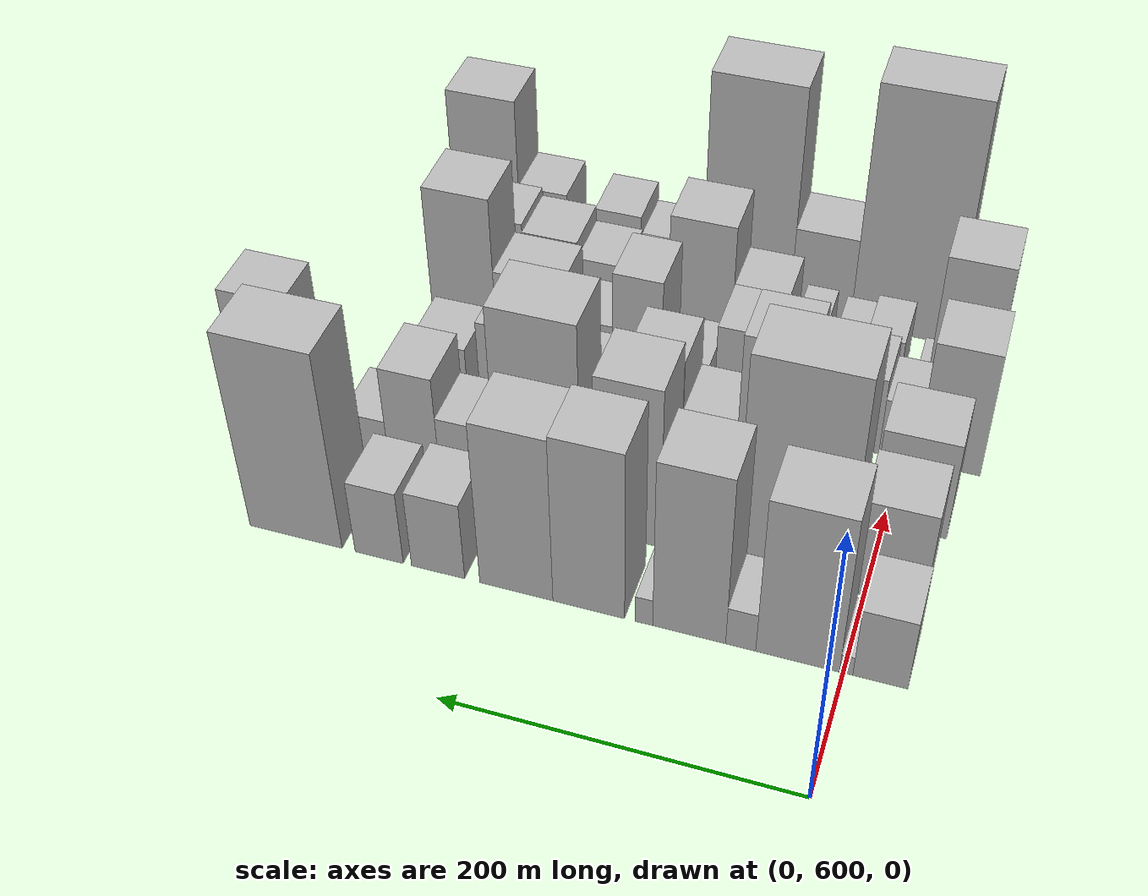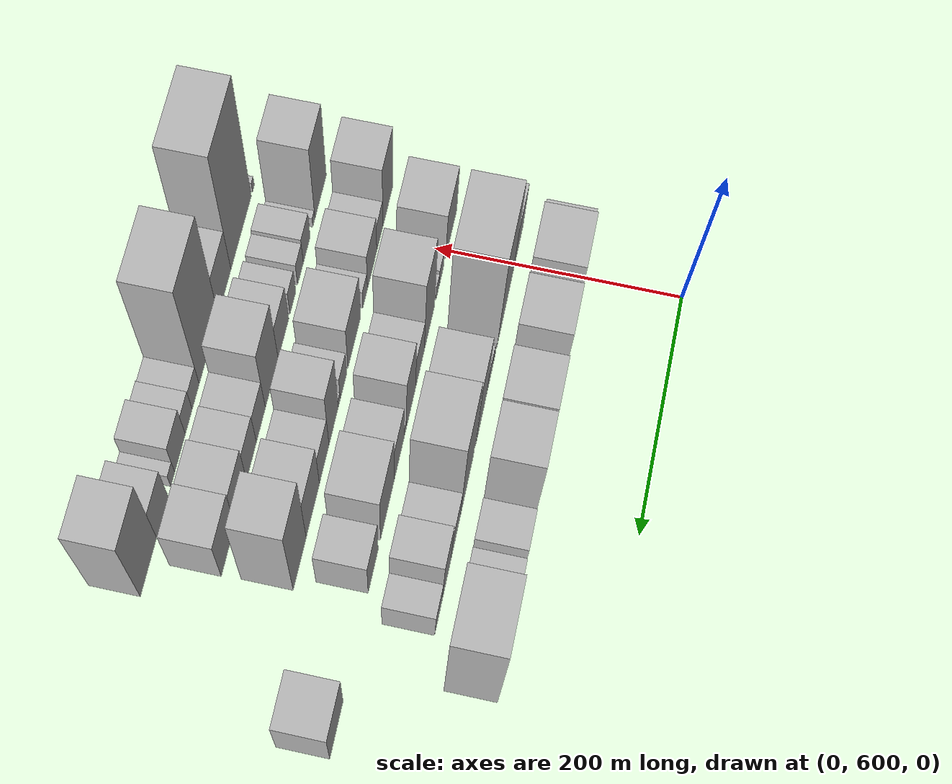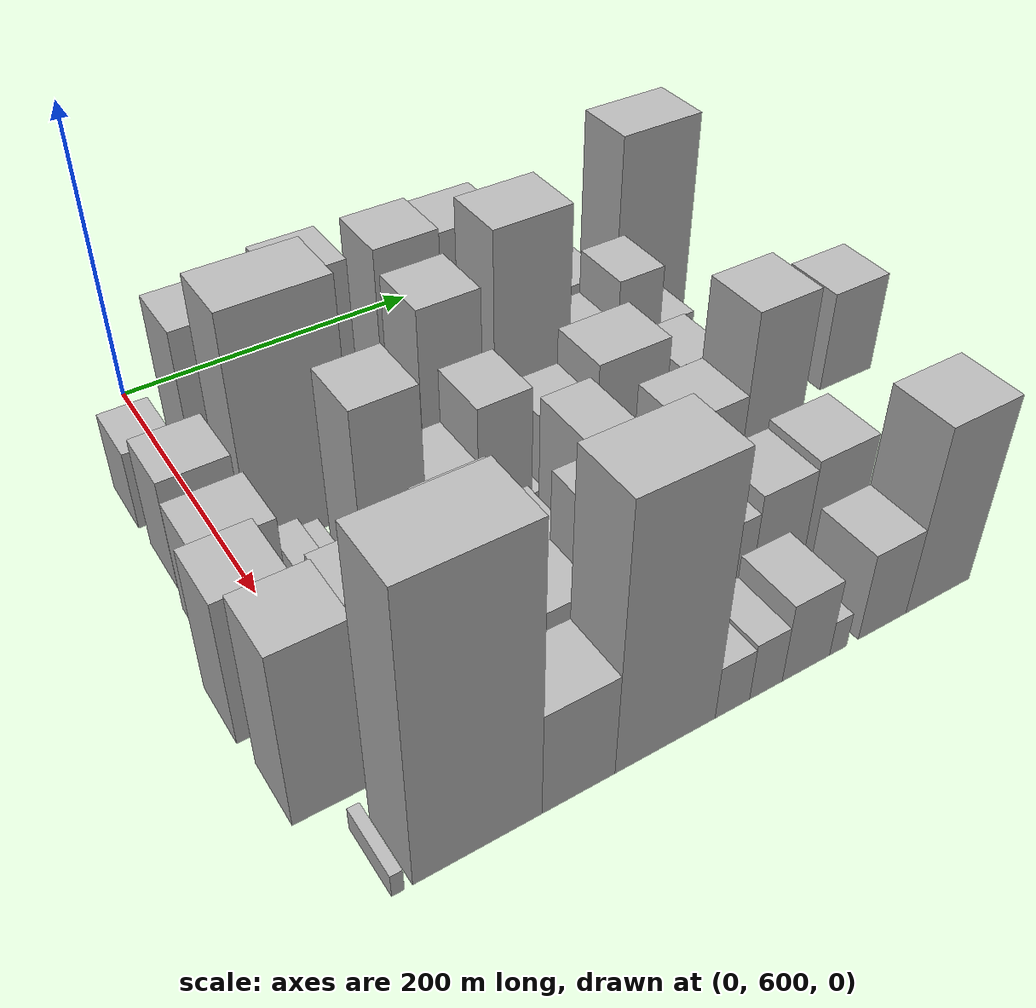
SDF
<sdf version="1.6">
 <world name="default">
  <model name="building_38">
   <static>1</static>
   <pose>100.0000 580.2497 0 0.000000 0.000000 0.000000</pose>
   <link name="link">
    <pose>0 0 27.00 0 0 0</pose>
    <collision name="collision"><geometry><box><size>40.0000 29.5528 54.0000</size></box></geometry></collision>
    <visual name="visual">
     <cast_shadows>0</cast_shadows>
     <geometry><box><size>40.0000 29.5528 54.0000</size></box></geometry>
     <material>
      <script>
       <uri>model://HANNAS_wall/materials/scripts</uri>
       <uri>model://HANNAS_wall/materials/textures</uri>
       <name>vrc/HANNAS_wall</name>
      </script>
     </material>
    </visual>
   </link>
  </model>
  <model name="building_39">
   <static>1</static>
   <pose>100.0000 598.6190 0 0.000000 0.000000 0.000000</pose>
   <link name="link">
    <pose>0 0 7.50 0 0 0</pose>
    <collision name="collision"><geometry><box><size>40.0000 7.1858 15.0000</size></box></geometry></collision>
    <visual name="visual">
     <cast_shadows>0</cast_shadows>
     <geometry><box><size>40.0000 7.1858 15.0000</size></box></geometry>
     <material>
      <script>
       <uri>model://HANNAS_wall/materials/scripts</uri>
       <uri>model://HANNAS_wall/materials/textures</uri>
       <name>vrc/HANNAS_wall</name>
      </script>
     </material>
    </visual>
   </link>
  </model>
  <model name="building_40">
   <static>1</static>
   <pose>100.0000 625.1180 0 0.000000 0.000000 0.000000</pose>
   <link name="link">
    <pose>0 0 60.00 0 0 0</pose>
    <collision name="collision"><geometry><box><size>40.0000 45.8122 120.0000</size></box></geometry></collision>
    <visual name="visual">
     <cast_shadows>0</cast_shadows>
     <geometry><box><size>40.0000 45.8122 120.0000</size></box></geometry>
     <material>
      <script>
       <uri>model://HANNAS_wall/materials/scripts</uri>
       <uri>model://HANNAS_wall/materials/textures</uri>
       <name>vrc/HANNAS_wall</name>
      </script>
     </material>
    </visual>
   </link>
  </model>
  <model name="building_41">
   <static>1</static>
   <pose>100.0000 656.3504 0 0.000000 0.000000 0.000000</pose>
   <link name="link">
    <pose>0 0 15.00 0 0 0</pose>
    <collision name="collision"><geometry><box><size>40.0000 16.6526 30.0000</size></box></geometry></collision>
    <visual name="visual">
     <cast_shadows>0</cast_shadows>
     <geometry><box><size>40.0000 16.6526 30.0000</size></box></geometry>
     <material>
      <script>
       <uri>model://HANNAS_wall/materials/scripts</uri>
       <uri>model://HANNAS_wall/materials/textures</uri>
       <name>vrc/HANNAS_wall</name>
      </script>
     </material>
    </visual>
   </link>
  </model>
  <model name="building_42">
   <static>1</static>
   <pose>100.0000 685.2054 0 0.000000 0.000000 0.000000</pose>
   <link name="link">
    <pose>0 0 64.50 0 0 0</pose>
    <collision name="collision"><geometry><box><size>40.0000 41.0574 129.0000</size></box></geometry></collision>
    <visual name="visual">
     <cast_shadows>0</cast_shadows>
     <geometry><box><size>40.0000 41.0574 129.0000</size></box></geometry>
     <material>
      <script>
       <uri>model://HANNAS_wall/materials/scripts</uri>
       <uri>model://HANNAS_wall/materials/textures</uri>
       <name>vrc/HANNAS_wall</name>
      </script>
     </material>
    </visual>
   </link>
  </model>
  <model name="building_43">
   <static>1</static>
   <pose>100.0000 710.7277 0 0.000000 0.000000 0.000000</pose>
   <link name="link">
    <pose>0 0 10.50 0 0 0</pose>
    <collision name="collision"><geometry><box><size>40.0000 9.9872 21.0000</size></box></geometry></collision>
    <visual name="visual">
     <cast_shadows>0</cast_shadows>
     <geometry><box><size>40.0000 9.9872 21.0000</size></box></geometry>
     <material>
      <script>
       <uri>model://HANNAS_wall/materials/scripts</uri>
       <uri>model://HANNAS_wall/materials/textures</uri>
       <name>vrc/HANNAS_wall</name>
      </script>
     </material>
    </visual>
   </link>
  </model>
  <model name="building_44">
   <static>1</static>
   <pose>100.0000 742.4370 0 0.000000 0.000000 0.000000</pose>
   <link name="link">
    <pose>0 0 64.50 0 0 0</pose>
    <collision name="collision"><geometry><box><size>40.0000 41.4312 129.0000</size></box></geometry></collision>
    <visual name="visual">
     <cast_shadows>0</cast_shadows>
     <geometry><box><size>40.0000 41.4312 129.0000</size></box></geometry>
     <material>
      <script>
       <uri>model://HANNAS_wall/materials/scripts</uri>
       <uri>model://HANNAS_wall/materials/textures</uri>
       <name>vrc/HANNAS_wall</name>
      </script>
     </material>
    </visual>
   </link>
  </model>
  <model name="building_45">
   <static>1</static>
   <pose>100.0000 784.6924 0 0.000000 0.000000 0.000000</pose>
   <link name="link">
    <pose>0 0 63.00 0 0 0</pose>
    <collision name="collision"><geometry><box><size>40.0000 43.0796 126.0000</size></box></geometry></collision>
    <visual name="visual">
     <cast_shadows>0</cast_shadows>
     <geometry><box><size>40.0000 43.0796 126.0000</size></box></geometry>
     <material>
      <script>
       <uri>model://HANNAS_wall/materials/scripts</uri>
       <uri>model://HANNAS_wall/materials/textures</uri>
       <name>vrc/HANNAS_wall</name>
      </script>
     </material>
    </visual>
   </link>
  </model>
  <model name="building_46">
   <static>1</static>
   <pose>100.0000 831.2336 0 0.000000 0.000000 0.000000</pose>
   <link name="link">
    <pose>0 0 30.00 0 0 0</pose>
    <collision name="collision"><geometry><box><size>40.0000 32.0029 60.0000</size></box></geometry></collision>
    <visual name="visual">
     <cast_shadows>0</cast_shadows>
     <geometry><box><size>40.0000 32.0029 60.0000</size></box></geometry>
     <material>
      <script>
       <uri>model://HANNAS_wall/materials/scripts</uri>
       <uri>model://HANNAS_wall/materials/textures</uri>
       <name>vrc/HANNAS_wall</name>
      </script>
     </material>
    </visual>
   </link>
  </model>
  <model name="building_47">
   <static>1</static>
   <pose>100.0000 866.9952 0 0.000000 0.000000 0.000000</pose>
   <link name="link">
    <pose>0 0 28.50 0 0 0</pose>
    <collision name="collision"><geometry><box><size>40.0000 29.5203 57.0000</size></box></geometry></collision>
    <visual name="visual">
     <cast_shadows>0</cast_shadows>
     <geometry><box><size>40.0000 29.5203 57.0000</size></box></geometry>
     <material>
      <script>
       <uri>model://HANNAS_wall/materials/scripts</uri>
       <uri>model://HANNAS_wall/materials/textures</uri>
       <name>vrc/HANNAS_wall</name>
      </script>
     </material>
    </visual>
   </link>
  </model>
  <model name="building_48">
   <static>1</static>
   <pose>100.0000 918.5560 0 0.000000 0.000000 0.000000</pose>
   <link name="link">
    <pose>0 0 75.00 0 0 0</pose>
    <collision name="collision"><geometry><box><size>40.0000 57.6013 150.0000</size></box></geometry></collision>
    <visual name="visual">
     <cast_shadows>0</cast_shadows>
     <geometry><box><size>40.0000 57.6013 150.0000</size></box></geometry>
     <material>
      <script>
       <uri>model://HANNAS_wall/materials/scripts</uri>
       <uri>model://HANNAS_wall/materials/textures</uri>
       <name>vrc/HANNAS_wall</name>
      </script>
     </material>
    </visual>
   </link>
  </model>
  <model name="building_95">
   <static>1</static>
   <pose>155.0000 586.9860 0 0.000000 0.000000 0.000000</pose>
   <link name="link">
    <pose>0 0 37.50 0 0 0</pose>
    <collision name="collision"><geometry><box><size>40.0000 40.6171 75.0000</size></box></geometry></collision>
    <visual name="visual">
     <cast_shadows>0</cast_shadows>
     <geometry><box><size>40.0000 40.6171 75.0000</size></box></geometry>
     <material>
      <script>
       <uri>model://HANNAS_wall/materials/scripts</uri>
       <uri>model://HANNAS_wall/materials/textures</uri>
       <name>vrc/HANNAS_wall</name>
      </script>
     </material>
    </visual>
   </link>
  </model>
  <model name="building_96">
   <static>1</static>
   <pose>155.0000 641.9509 0 0.000000 0.000000 0.000000</pose>
   <link name="link">
    <pose>0 0 81.00 0 0 0</pose>
    <collision name="collision"><geometry><box><size>40.0000 63.3127 162.0000</size></box></geometry></collision>
    <visual name="visual">
     <cast_shadows>0</cast_shadows>
     <geometry><box><size>40.0000 63.3127 162.0000</size></box></geometry>
     <material>
      <script>
       <uri>model://HANNAS_wall/materials/scripts</uri>
       <uri>model://HANNAS_wall/materials/textures</uri>
       <name>vrc/HANNAS_wall</name>
      </script>
     </material>
    </visual>
   </link>
  </model>
  <model name="building_97">
   <static>1</static>
   <pose>155.0000 685.5386 0 0.000000 0.000000 0.000000</pose>
   <link name="link">
    <pose>0 0 12.00 0 0 0</pose>
    <collision name="collision"><geometry><box><size>40.0000 9.8627 24.0000</size></box></geometry></collision>
    <visual name="visual">
     <cast_shadows>0</cast_shadows>
     <geometry><box><size>40.0000 9.8627 24.0000</size></box></geometry>
     <material>
      <script>
       <uri>model://HANNAS_wall/materials/scripts</uri>
       <uri>model://HANNAS_wall/materials/textures</uri>
       <name>vrc/HANNAS_wall</name>
      </script>
     </material>
    </visual>
   </link>
  </model>
  <model name="building_98">
   <static>1</static>
   <pose>155.0000 702.4567 0 0.000000 0.000000 0.000000</pose>
   <link name="link">
    <pose>0 0 22.50 0 0 0</pose>
    <collision name="collision"><geometry><box><size>40.0000 23.9733 45.0000</size></box></geometry></collision>
    <visual name="visual">
     <cast_shadows>0</cast_shadows>
     <geometry><box><size>40.0000 23.9733 45.0000</size></box></geometry>
     <material>
      <script>
       <uri>model://HANNAS_wall/materials/scripts</uri>
       <uri>model://HANNAS_wall/materials/textures</uri>
       <name>vrc/HANNAS_wall</name>
      </script>
     </material>
    </visual>
   </link>
  </model>
  <model name="building_99">
   <static>1</static>
   <pose>155.0000 737.2817 0 0.000000 0.000000 0.000000</pose>
   <link name="link">
    <pose>0 0 61.50 0 0 0</pose>
    <collision name="collision"><geometry><box><size>40.0000 39.6768 123.0000</size></box></geometry></collision>
    <visual name="visual">
     <cast_shadows>0</cast_shadows>
     <geometry><box><size>40.0000 39.6768 123.0000</size></box></geometry>
     <material>
      <script>
       <uri>model://HANNAS_wall/materials/scripts</uri>
       <uri>model://HANNAS_wall/materials/textures</uri>
       <name>vrc/HANNAS_wall</name>
      </script>
     </material>
    </visual>
   </link>
  </model>
  <model name="building_100">
   <static>1</static>
   <pose>155.0000 790.6278 0 0.000000 0.000000 0.000000</pose>
   <link name="link">
    <pose>0 0 78.00 0 0 0</pose>
    <collision name="collision"><geometry><box><size>40.0000 51.0154 156.0000</size></box></geometry></collision>
    <visual name="visual">
     <cast_shadows>0</cast_shadows>
     <geometry><box><size>40.0000 51.0154 156.0000</size></box></geometry>
     <material>
      <script>
       <uri>model://HANNAS_wall/materials/scripts</uri>
       <uri>model://HANNAS_wall/materials/textures</uri>
       <name>vrc/HANNAS_wall</name>
      </script>
     </material>
    </visual>
   </link>
  </model>
  <model name="building_101">
   <static>1</static>
   <pose>155.0000 833.4321 0 0.000000 0.000000 0.000000</pose>
   <link name="link">
    <pose>0 0 31.50 0 0 0</pose>
    <collision name="collision"><geometry><box><size>40.0000 34.5933 63.0000</size></box></geometry></collision>
    <visual name="visual">
     <cast_shadows>0</cast_shadows>
     <geometry><box><size>40.0000 34.5933 63.0000</size></box></geometry>
     <material>
      <script>
       <uri>model://HANNAS_wall/materials/scripts</uri>
       <uri>model://HANNAS_wall/materials/textures</uri>
       <name>vrc/HANNAS_wall</name>
      </script>
     </material>
    </visual>
   </link>
  </model>
  <model name="building_102">
   <static>1</static>
   <pose>155.0000 866.6142 0 0.000000 0.000000 0.000000</pose>
   <link name="link">
    <pose>0 0 46.50 0 0 0</pose>
    <collision name="collision"><geometry><box><size>40.0000 31.7709 93.0000</size></box></geometry></collision>
    <visual name="visual">
     <cast_shadows>0</cast_shadows>
     <geometry><box><size>40.0000 31.7709 93.0000</size></box></geometry>
     <material>
      <script>
       <uri>model://HANNAS_wall/materials/scripts</uri>
       <uri>model://HANNAS_wall/materials/textures</uri>
       <name>vrc/HANNAS_wall</name>
      </script>
     </material>
    </visual>
   </link>
  </model>
  <model name="building_103">
   <static>1</static>
   <pose>155.0000 895.5078 0 0.000000 0.000000 0.000000</pose>
   <link name="link">
    <pose>0 0 25.50 0 0 0</pose>
    <collision name="collision"><geometry><box><size>40.0000 26.0162 51.0000</size></box></geometry></collision>
    <visual name="visual">
     <cast_shadows>0</cast_shadows>
     <geometry><box><size>40.0000 26.0162 51.0000</size></box></geometry>
     <material>
      <script>
       <uri>model://HANNAS_wall/materials/scripts</uri>
       <uri>model://HANNAS_wall/materials/textures</uri>
       <name>vrc/HANNAS_wall</name>
      </script>
     </material>
    </visual>
   </link>
  </model>
  <model name="building_147">
   <static>1</static>
   <pose>210.0000 585.4125 0 0.000000 0.000000 0.000000</pose>
   <link name="link">
    <pose>0 0 37.50 0 0 0</pose>
    <collision name="collision"><geometry><box><size>40.0000 44.0689 75.0000</size></box></geometry></collision>
    <visual name="visual">
     <cast_shadows>0</cast_shadows>
     <geometry><box><size>40.0000 44.0689 75.0000</size></box></geometry>
     <material>
      <script>
       <uri>model://HANNAS_wall/materials/scripts</uri>
       <uri>model://HANNAS_wall/materials/textures</uri>
       <name>vrc/HANNAS_wall</name>
      </script>
     </material>
    </visual>
   </link>
  </model>
  <model name="building_148">
   <static>1</static>
   <pose>210.0000 623.9679 0 0.000000 0.000000 0.000000</pose>
   <link name="link">
    <pose>0 0 15.00 0 0 0</pose>
    <collision name="collision"><geometry><box><size>40.0000 17.0419 30.0000</size></box></geometry></collision>
    <visual name="visual">
     <cast_shadows>0</cast_shadows>
     <geometry><box><size>40.0000 17.0419 30.0000</size></box></geometry>
     <material>
      <script>
       <uri>model://HANNAS_wall/materials/scripts</uri>
       <uri>model://HANNAS_wall/materials/textures</uri>
       <name>vrc/HANNAS_wall</name>
      </script>
     </material>
    </visual>
   </link>
  </model>
  <model name="building_149">
   <static>1</static>
   <pose>210.0000 638.2178 0 0.000000 0.000000 0.000000</pose>
   <link name="link">
    <pose>0 0 12.00 0 0 0</pose>
    <collision name="collision"><geometry><box><size>40.0000 11.4579 24.0000</size></box></geometry></collision>
    <visual name="visual">
     <cast_shadows>0</cast_shadows>
     <geometry><box><size>40.0000 11.4579 24.0000</size></box></geometry>
     <material>
      <script>
       <uri>model://HANNAS_wall/materials/scripts</uri>
       <uri>model://HANNAS_wall/materials/textures</uri>
       <name>vrc/HANNAS_wall</name>
      </script>
     </material>
    </visual>
   </link>
  </model>
  <model name="building_150">
   <static>1</static>
   <pose>210.0000 669.3617 0 0.000000 0.000000 0.000000</pose>
   <link name="link">
    <pose>0 0 61.50 0 0 0</pose>
    <collision name="collision"><geometry><box><size>40.0000 38.8299 123.0000</size></box></geometry></collision>
    <visual name="visual">
     <cast_shadows>0</cast_shadows>
     <geometry><box><size>40.0000 38.8299 123.0000</size></box></geometry>
     <material>
      <script>
       <uri>model://HANNAS_wall/materials/scripts</uri>
       <uri>model://HANNAS_wall/materials/textures</uri>
       <name>vrc/HANNAS_wall</name>
      </script>
     </material>
    </visual>
   </link>
  </model>
  <model name="building_151">
   <static>1</static>
   <pose>210.0000 704.8862 0 0.000000 0.000000 0.000000</pose>
   <link name="link">
    <pose>0 0 28.50 0 0 0</pose>
    <collision name="collision"><geometry><box><size>40.0000 32.2192 57.0000</size></box></geometry></collision>
    <visual name="visual">
     <cast_shadows>0</cast_shadows>
     <geometry><box><size>40.0000 32.2192 57.0000</size></box></geometry>
     <material>
      <script>
       <uri>model://HANNAS_wall/materials/scripts</uri>
       <uri>model://HANNAS_wall/materials/textures</uri>
       <name>vrc/HANNAS_wall</name>
      </script>
     </material>
    </visual>
   </link>
  </model>
  <model name="building_152">
   <static>1</static>
   <pose>210.0000 737.9944 0 0.000000 0.000000 0.000000</pose>
   <link name="link">
    <pose>0 0 46.50 0 0 0</pose>
    <collision name="collision"><geometry><box><size>40.0000 33.9971 93.0000</size></box></geometry></collision>
    <visual name="visual">
     <cast_shadows>0</cast_shadows>
     <geometry><box><size>40.0000 33.9971 93.0000</size></box></geometry>
     <material>
      <script>
       <uri>model://HANNAS_wall/materials/scripts</uri>
       <uri>model://HANNAS_wall/materials/textures</uri>
       <name>vrc/HANNAS_wall</name>
      </script>
     </material>
    </visual>
   </link>
  </model>
  <model name="building_153">
   <static>1</static>
   <pose>210.0000 759.0286 0 0.000000 0.000000 0.000000</pose>
   <link name="link">
    <pose>0 0 9.00 0 0 0</pose>
    <collision name="collision"><geometry><box><size>40.0000 8.0713 18.0000</size></box></geometry></collision>
    <visual name="visual">
     <cast_shadows>0</cast_shadows>
     <geometry><box><size>40.0000 8.0713 18.0000</size></box></geometry>
     <material>
      <script>
       <uri>model://HANNAS_wall/materials/scripts</uri>
       <uri>model://HANNAS_wall/materials/textures</uri>
       <name>vrc/HANNAS_wall</name>
      </script>
     </material>
    </visual>
   </link>
  </model>
  <model name="building_154">
   <static>1</static>
   <pose>210.0000 780.3197 0 0.000000 0.000000 0.000000</pose>
   <link name="link">
    <pose>0 0 33.00 0 0 0</pose>
    <collision name="collision"><geometry><box><size>40.0000 34.5108 66.0000</size></box></geometry></collision>
    <visual name="visual">
     <cast_shadows>0</cast_shadows>
     <geometry><box><size>40.0000 34.5108 66.0000</size></box></geometry>
     <material>
      <script>
       <uri>model://HANNAS_wall/materials/scripts</uri>
       <uri>model://HANNAS_wall/materials/textures</uri>
       <name>vrc/HANNAS_wall</name>
      </script>
     </material>
    </visual>
   </link>
  </model>
  <model name="building_155">
   <static>1</static>
   <pose>210.0000 821.7364 0 0.000000 0.000000 0.000000</pose>
   <link name="link">
    <pose>0 0 45.00 0 0 0</pose>
    <collision name="collision"><geometry><box><size>40.0000 48.3228 90.0000</size></box></geometry></collision>
    <visual name="visual">
     <cast_shadows>0</cast_shadows>
     <geometry><box><size>40.0000 48.3228 90.0000</size></box></geometry>
     <material>
      <script>
       <uri>model://HANNAS_wall/materials/scripts</uri>
       <uri>model://HANNAS_wall/materials/textures</uri>
       <name>vrc/HANNAS_wall</name>
      </script>
     </material>
    </visual>
   </link>
  </model>
  <model name="building_156">
   <static>1</static>
   <pose>210.0000 870.8771 0 0.000000 0.000000 0.000000</pose>
   <link name="link">
    <pose>0 0 33.00 0 0 0</pose>
    <collision name="collision"><geometry><box><size>40.0000 33.9586 66.0000</size></box></geometry></collision>
    <visual name="visual">
     <cast_shadows>0</cast_shadows>
     <geometry><box><size>40.0000 33.9586 66.0000</size></box></geometry>
     <material>
      <script>
       <uri>model://HANNAS_wall/materials/scripts</uri>
       <uri>model://HANNAS_wall/materials/textures</uri>
       <name>vrc/HANNAS_wall</name>
      </script>
     </material>
    </visual>
   </link>
  </model>
  <model name="building_157">
   <static>1</static>
   <pose>210.0000 992.0247 0 0.000000 0.000000 0.000000</pose>
   <link name="link">
    <pose>0 0 36.00 0 0 0</pose>
    <collision name="collision"><geometry><box><size>40.0000 42.7788 72.0000</size></box></geometry></collision>
    <visual name="visual">
     <cast_shadows>0</cast_shadows>
     <geometry><box><size>40.0000 42.7788 72.0000</size></box></geometry>
     <material>
      <script>
       <uri>model://HANNAS_wall/materials/scripts</uri>
       <uri>model://HANNAS_wall/materials/textures</uri>
       <name>vrc/HANNAS_wall</name>
      </script>
     </material>
    </visual>
   </link>
  </model>
  <model name="building_199">
   <static>1</static>
   <pose>265.0000 571.6134 0 0.000000 0.000000 0.000000</pose>
   <link name="link">
    <pose>0 0 48.00 0 0 0</pose>
    <collision name="collision"><geometry><box><size>40.0000 38.2694 96.0000</size></box></geometry></collision>
    <visual name="visual">
     <cast_shadows>0</cast_shadows>
     <geometry><box><size>40.0000 38.2694 96.0000</size></box></geometry>
     <material>
      <script>
       <uri>model://HANNAS_wall/materials/scripts</uri>
       <uri>model://HANNAS_wall/materials/textures</uri>
       <name>vrc/HANNAS_wall</name>
      </script>
     </material>
    </visual>
   </link>
  </model>
  <model name="building_200">
   <static>1</static>
   <pose>265.0000 602.0293 0 0.000000 0.000000 0.000000</pose>
   <link name="link">
    <pose>0 0 22.50 0 0 0</pose>
    <collision name="collision"><geometry><box><size>40.0000 22.5624 45.0000</size></box></geometry></collision>
    <visual name="visual">
     <cast_shadows>0</cast_shadows>
     <geometry><box><size>40.0000 22.5624 45.0000</size></box></geometry>
     <material>
      <script>
       <uri>model://HANNAS_wall/materials/scripts</uri>
       <uri>model://HANNAS_wall/materials/textures</uri>
       <name>vrc/HANNAS_wall</name>
      </script>
     </material>
    </visual>
   </link>
  </model>
  <model name="building_201">
   <static>1</static>
   <pose>265.0000 630.2120 0 0.000000 0.000000 0.000000</pose>
   <link name="link">
    <pose>0 0 30.00 0 0 0</pose>
    <collision name="collision"><geometry><box><size>40.0000 33.8030 60.0000</size></box></geometry></collision>
    <visual name="visual">
     <cast_shadows>0</cast_shadows>
     <geometry><box><size>40.0000 33.8030 60.0000</size></box></geometry>
     <material>
      <script>
       <uri>model://HANNAS_wall/materials/scripts</uri>
       <uri>model://HANNAS_wall/materials/textures</uri>
       <name>vrc/HANNAS_wall</name>
      </script>
     </material>
    </visual>
   </link>
  </model>
  <model name="building_202">
   <static>1</static>
   <pose>265.0000 655.3230 0 0.000000 0.000000 0.000000</pose>
   <link name="link">
    <pose>0 0 15.00 0 0 0</pose>
    <collision name="collision"><geometry><box><size>40.0000 16.4191 30.0000</size></box></geometry></collision>
    <visual name="visual">
     <cast_shadows>0</cast_shadows>
     <geometry><box><size>40.0000 16.4191 30.0000</size></box></geometry>
     <material>
      <script>
       <uri>model://HANNAS_wall/materials/scripts</uri>
       <uri>model://HANNAS_wall/materials/textures</uri>
       <name>vrc/HANNAS_wall</name>
      </script>
     </material>
    </visual>
   </link>
  </model>
  <model name="building_203">
   <static>1</static>
   <pose>265.0000 693.8082 0 0.000000 0.000000 0.000000</pose>
   <link name="link">
    <pose>0 0 37.50 0 0 0</pose>
    <collision name="collision"><geometry><box><size>40.0000 44.5512 75.0000</size></box></geometry></collision>
    <visual name="visual">
     <cast_shadows>0</cast_shadows>
     <geometry><box><size>40.0000 44.5512 75.0000</size></box></geometry>
     <material>
      <script>
       <uri>model://HANNAS_wall/materials/scripts</uri>
       <uri>model://HANNAS_wall/materials/textures</uri>
       <name>vrc/HANNAS_wall</name>
      </script>
     </material>
    </visual>
   </link>
  </model>
  <model name="building_204">
   <static>1</static>
   <pose>265.0000 731.2481 0 0.000000 0.000000 0.000000</pose>
   <link name="link">
    <pose>0 0 21.00 0 0 0</pose>
    <collision name="collision"><geometry><box><size>40.0000 22.3287 42.0000</size></box></geometry></collision>
    <visual name="visual">
     <cast_shadows>0</cast_shadows>
     <geometry><box><size>40.0000 22.3287 42.0000</size></box></geometry>
     <material>
      <script>
       <uri>model://HANNAS_wall/materials/scripts</uri>
       <uri>model://HANNAS_wall/materials/textures</uri>
       <name>vrc/HANNAS_wall</name>
      </script>
     </material>
    </visual>
   </link>
  </model>
  <model name="building_205">
   <static>1</static>
   <pose>265.0000 745.9995 0 0.000000 0.000000 0.000000</pose>
   <link name="link">
    <pose>0 0 7.50 0 0 0</pose>
    <collision name="collision"><geometry><box><size>40.0000 7.1740 15.0000</size></box></geometry></collision>
    <visual name="visual">
     <cast_shadows>0</cast_shadows>
     <geometry><box><size>40.0000 7.1740 15.0000</size></box></geometry>
     <material>
      <script>
       <uri>model://HANNAS_wall/materials/scripts</uri>
       <uri>model://HANNAS_wall/materials/textures</uri>
       <name>vrc/HANNAS_wall</name>
      </script>
     </material>
    </visual>
   </link>
  </model>
  <model name="building_206">
   <static>1</static>
   <pose>265.0000 765.1275 0 0.000000 0.000000 0.000000</pose>
   <link name="link">
    <pose>0 0 49.50 0 0 0</pose>
    <collision name="collision"><geometry><box><size>40.0000 31.0821 99.0000</size></box></geometry></collision>
    <visual name="visual">
     <cast_shadows>0</cast_shadows>
     <geometry><box><size>40.0000 31.0821 99.0000</size></box></geometry>
     <material>
      <script>
       <uri>model://HANNAS_wall/materials/scripts</uri>
       <uri>model://HANNAS_wall/materials/textures</uri>
       <name>vrc/HANNAS_wall</name>
      </script>
     </material>
    </visual>
   </link>
  </model>
  <model name="building_207">
   <static>1</static>
   <pose>265.0000 796.6740 0 0.000000 0.000000 0.000000</pose>
   <link name="link">
    <pose>0 0 28.50 0 0 0</pose>
    <collision name="collision"><geometry><box><size>40.0000 32.0108 57.0000</size></box></geometry></collision>
    <visual name="visual">
     <cast_shadows>0</cast_shadows>
     <geometry><box><size>40.0000 32.0108 57.0000</size></box></geometry>
     <material>
      <script>
       <uri>model://HANNAS_wall/materials/scripts</uri>
       <uri>model://HANNAS_wall/materials/textures</uri>
       <name>vrc/HANNAS_wall</name>
      </script>
     </material>
    </visual>
   </link>
  </model>
  <model name="building_208">
   <static>1</static>
   <pose>265.0000 834.4291 0 0.000000 0.000000 0.000000</pose>
   <link name="link">
    <pose>0 0 40.50 0 0 0</pose>
    <collision name="collision"><geometry><box><size>40.0000 43.4993 81.0000</size></box></geometry></collision>
    <visual name="visual">
     <cast_shadows>0</cast_shadows>
     <geometry><box><size>40.0000 43.4993 81.0000</size></box></geometry>
     <material>
      <script>
       <uri>model://HANNAS_wall/materials/scripts</uri>
       <uri>model://HANNAS_wall/materials/textures</uri>
       <name>vrc/HANNAS_wall</name>
      </script>
     </material>
    </visual>
   </link>
  </model>
  <model name="building_209">
   <static>1</static>
   <pose>265.0000 876.9808 0 0.000000 0.000000 0.000000</pose>
   <link name="link">
    <pose>0 0 67.50 0 0 0</pose>
    <collision name="collision"><geometry><box><size>40.0000 41.6041 135.0000</size></box></geometry></collision>
    <visual name="visual">
     <cast_shadows>0</cast_shadows>
     <geometry><box><size>40.0000 41.6041 135.0000</size></box></geometry>
     <material>
      <script>
       <uri>model://HANNAS_wall/materials/scripts</uri>
       <uri>model://HANNAS_wall/materials/textures</uri>
       <name>vrc/HANNAS_wall</name>
      </script>
     </material>
    </visual>
   </link>
  </model>
  <model name="building_252">
   <static>1</static>
   <pose>320.0000 575.4097 0 0.000000 0.000000 0.000000</pose>
   <link name="link">
    <pose>0 0 57.00 0 0 0</pose>
    <collision name="collision"><geometry><box><size>40.0000 40.0178 114.0000</size></box></geometry></collision>
    <visual name="visual">
     <cast_shadows>0</cast_shadows>
     <geometry><box><size>40.0000 40.0178 114.0000</size></box></geometry>
     <material>
      <script>
       <uri>model://HANNAS_wall/materials/scripts</uri>
       <uri>model://HANNAS_wall/materials/textures</uri>
       <name>vrc/HANNAS_wall</name>
      </script>
     </material>
    </visual>
   </link>
  </model>
  <model name="building_253">
   <static>1</static>
   <pose>320.0000 599.1319 0 0.000000 0.000000 0.000000</pose>
   <link name="link">
    <pose>0 0 7.50 0 0 0</pose>
    <collision name="collision"><geometry><box><size>40.0000 7.4267 15.0000</size></box></geometry></collision>
    <visual name="visual">
     <cast_shadows>0</cast_shadows>
     <geometry><box><size>40.0000 7.4267 15.0000</size></box></geometry>
     <material>
      <script>
       <uri>model://HANNAS_wall/materials/scripts</uri>
       <uri>model://HANNAS_wall/materials/textures</uri>
       <name>vrc/HANNAS_wall</name>
      </script>
     </material>
    </visual>
   </link>
  </model>
  <model name="building_254">
   <static>1</static>
   <pose>320.0000 623.7191 0 0.000000 0.000000 0.000000</pose>
   <link name="link">
    <pose>0 0 21.00 0 0 0</pose>
    <collision name="collision"><geometry><box><size>40.0000 23.7475 42.0000</size></box></geometry></collision>
    <visual name="visual">
     <cast_shadows>0</cast_shadows>
     <geometry><box><size>40.0000 23.7475 42.0000</size></box></geometry>
     <material>
      <script>
       <uri>model://HANNAS_wall/materials/scripts</uri>
       <uri>model://HANNAS_wall/materials/textures</uri>
       <name>vrc/HANNAS_wall</name>
      </script>
     </material>
    </visual>
   </link>
  </model>
  <model name="building_255">
   <static>1</static>
   <pose>320.0000 645.3719 0 0.000000 0.000000 0.000000</pose>
   <link name="link">
    <pose>0 0 18.00 0 0 0</pose>
    <collision name="collision"><geometry><box><size>40.0000 19.5583 36.0000</size></box></geometry></collision>
    <visual name="visual">
     <cast_shadows>0</cast_shadows>
     <geometry><box><size>40.0000 19.5583 36.0000</size></box></geometry>
     <material>
      <script>
       <uri>model://HANNAS_wall/materials/scripts</uri>
       <uri>model://HANNAS_wall/materials/textures</uri>
       <name>vrc/HANNAS_wall</name>
      </script>
     </material>
    </visual>
   </link>
  </model>
  <model name="building_256">
   <static>1</static>
   <pose>320.0000 671.0574 0 0.000000 0.000000 0.000000</pose>
   <link name="link">
    <pose>0 0 19.50 0 0 0</pose>
    <collision name="collision"><geometry><box><size>40.0000 19.8127 39.0000</size></box></geometry></collision>
    <visual name="visual">
     <cast_shadows>0</cast_shadows>
     <geometry><box><size>40.0000 19.8127 39.0000</size></box></geometry>
     <material>
      <script>
       <uri>model://HANNAS_wall/materials/scripts</uri>
       <uri>model://HANNAS_wall/materials/textures</uri>
       <name>vrc/HANNAS_wall</name>
      </script>
     </material>
    </visual>
   </link>
  </model>
  <model name="building_257">
   <static>1</static>
   <pose>320.0000 702.4006 0 0.000000 0.000000 0.000000</pose>
   <link name="link">
    <pose>0 0 30.00 0 0 0</pose>
    <collision name="collision"><geometry><box><size>40.0000 34.8736 60.0000</size></box></geometry></collision>
    <visual name="visual">
     <cast_shadows>0</cast_shadows>
     <geometry><box><size>40.0000 34.8736 60.0000</size></box></geometry>
     <material>
      <script>
       <uri>model://HANNAS_wall/materials/scripts</uri>
       <uri>model://HANNAS_wall/materials/textures</uri>
       <name>vrc/HANNAS_wall</name>
      </script>
     </material>
    </visual>
   </link>
  </model>
  <model name="building_258">
   <static>1</static>
   <pose>320.0000 740.6330 0 0.000000 0.000000 0.000000</pose>
   <link name="link">
    <pose>0 0 52.50 0 0 0</pose>
    <collision name="collision"><geometry><box><size>40.0000 41.5913 105.0000</size></box></geometry></collision>
    <visual name="visual">
     <cast_shadows>0</cast_shadows>
     <geometry><box><size>40.0000 41.5913 105.0000</size></box></geometry>
     <material>
      <script>
       <uri>model://HANNAS_wall/materials/scripts</uri>
       <uri>model://HANNAS_wall/materials/textures</uri>
       <name>vrc/HANNAS_wall</name>
      </script>
     </material>
    </visual>
   </link>
  </model>
  <model name="building_259">
   <static>1</static>
   <pose>320.0000 775.8626 0 0.000000 0.000000 0.000000</pose>
   <link name="link">
    <pose>0 0 27.00 0 0 0</pose>
    <collision name="collision"><geometry><box><size>40.0000 28.8678 54.0000</size></box></geometry></collision>
    <visual name="visual">
     <cast_shadows>0</cast_shadows>
     <geometry><box><size>40.0000 28.8678 54.0000</size></box></geometry>
     <material>
      <script>
       <uri>model://HANNAS_wall/materials/scripts</uri>
       <uri>model://HANNAS_wall/materials/textures</uri>
       <name>vrc/HANNAS_wall</name>
      </script>
     </material>
    </visual>
   </link>
  </model>
  <model name="building_260">
   <static>1</static>
   <pose>320.0000 805.8638 0 0.000000 0.000000 0.000000</pose>
   <link name="link">
    <pose>0 0 28.50 0 0 0</pose>
    <collision name="collision"><geometry><box><size>40.0000 31.1346 57.0000</size></box></geometry></collision>
    <visual name="visual">
     <cast_shadows>0</cast_shadows>
     <geometry><box><size>40.0000 31.1346 57.0000</size></box></geometry>
     <material>
      <script>
       <uri>model://HANNAS_wall/materials/scripts</uri>
       <uri>model://HANNAS_wall/materials/textures</uri>
       <name>vrc/HANNAS_wall</name>
      </script>
     </material>
    </visual>
   </link>
  </model>
  <model name="building_261">
   <static>1</static>
   <pose>320.0000 839.6159 0 0.000000 0.000000 0.000000</pose>
   <link name="link">
    <pose>0 0 34.50 0 0 0</pose>
    <collision name="collision"><geometry><box><size>40.0000 36.3696 69.0000</size></box></geometry></collision>
    <visual name="visual">
     <cast_shadows>0</cast_shadows>
     <geometry><box><size>40.0000 36.3696 69.0000</size></box></geometry>
     <material>
      <script>
       <uri>model://HANNAS_wall/materials/scripts</uri>
       <uri>model://HANNAS_wall/materials/textures</uri>
       <name>vrc/HANNAS_wall</name>
      </script>
     </material>
    </visual>
   </link>
  </model>
  <model name="building_262">
   <static>1</static>
   <pose>320.0000 878.3900 0 0.000000 0.000000 0.000000</pose>
   <link name="link">
    <pose>0 0 37.50 0 0 0</pose>
    <collision name="collision"><geometry><box><size>40.0000 41.1786 75.0000</size></box></geometry></collision>
    <visual name="visual">
     <cast_shadows>0</cast_shadows>
     <geometry><box><size>40.0000 41.1786 75.0000</size></box></geometry>
     <material>
      <script>
       <uri>model://HANNAS_wall/materials/scripts</uri>
       <uri>model://HANNAS_wall/materials/textures</uri>
       <name>vrc/HANNAS_wall</name>
      </script>
     </material>
    </visual>
   </link>
  </model>
  <model name="building_306">
   <static>1</static>
   <pose>375.0000 579.5037 0 0.000000 0.000000 0.000000</pose>
   <link name="link">
    <pose>0 0 7.50 0 0 0</pose>
    <collision name="collision"><geometry><box><size>40.0000 6.3276 15.0000</size></box></geometry></collision>
    <visual name="visual">
     <cast_shadows>0</cast_shadows>
     <geometry><box><size>40.0000 6.3276 15.0000</size></box></geometry>
     <material>
      <script>
       <uri>model://HANNAS_wall/materials/scripts</uri>
       <uri>model://HANNAS_wall/materials/textures</uri>
       <name>vrc/HANNAS_wall</name>
      </script>
     </material>
    </visual>
   </link>
  </model>
  <model name="building_307">
   <static>1</static>
   <pose>375.0000 620.1222 0 0.000000 0.000000 0.000000</pose>
   <link name="link">
    <pose>0 0 93.00 0 0 0</pose>
    <collision name="collision"><geometry><box><size>40.0000 66.9093 186.0000</size></box></geometry></collision>
    <visual name="visual">
     <cast_shadows>0</cast_shadows>
     <geometry><box><size>40.0000 66.9093 186.0000</size></box></geometry>
     <material>
      <script>
       <uri>model://HANNAS_wall/materials/scripts</uri>
       <uri>model://HANNAS_wall/materials/textures</uri>
       <name>vrc/HANNAS_wall</name>
      </script>
     </material>
    </visual>
   </link>
  </model>
  <model name="building_308">
   <static>1</static>
   <pose>375.0000 673.8694 0 0.000000 0.000000 0.000000</pose>
   <link name="link">
    <pose>0 0 34.50 0 0 0</pose>
    <collision name="collision"><geometry><box><size>40.0000 40.5853 69.0000</size></box></geometry></collision>
    <visual name="visual">
     <cast_shadows>0</cast_shadows>
     <geometry><box><size>40.0000 40.5853 69.0000</size></box></geometry>
     <material>
      <script>
       <uri>model://HANNAS_wall/materials/scripts</uri>
       <uri>model://HANNAS_wall/materials/textures</uri>
       <name>vrc/HANNAS_wall</name>
      </script>
     </material>
    </visual>
   </link>
  </model>
  <model name="building_309">
   <static>1</static>
   <pose>375.0000 723.8680 0 0.000000 0.000000 0.000000</pose>
   <link name="link">
    <pose>0 0 87.00 0 0 0</pose>
    <collision name="collision"><geometry><box><size>40.0000 59.4119 174.0000</size></box></geometry></collision>
    <visual name="visual">
     <cast_shadows>0</cast_shadows>
     <geometry><box><size>40.0000 59.4119 174.0000</size></box></geometry>
     <material>
      <script>
       <uri>model://HANNAS_wall/materials/scripts</uri>
       <uri>model://HANNAS_wall/materials/textures</uri>
       <name>vrc/HANNAS_wall</name>
      </script>
     </material>
    </visual>
   </link>
  </model>
  <model name="building_310">
   <static>1</static>
   <pose>375.0000 764.3208 0 0.000000 0.000000 0.000000</pose>
   <link name="link">
    <pose>0 0 18.00 0 0 0</pose>
    <collision name="collision"><geometry><box><size>40.0000 21.4937 36.0000</size></box></geometry></collision>
    <visual name="visual">
     <cast_shadows>0</cast_shadows>
     <geometry><box><size>40.0000 21.4937 36.0000</size></box></geometry>
     <material>
      <script>
       <uri>model://HANNAS_wall/materials/scripts</uri>
       <uri>model://HANNAS_wall/materials/textures</uri>
       <name>vrc/HANNAS_wall</name>
      </script>
     </material>
    </visual>
   </link>
  </model>
  <model name="building_311">
   <static>1</static>
   <pose>375.0000 785.5322 0 0.000000 0.000000 0.000000</pose>
   <link name="link">
    <pose>0 0 19.50 0 0 0</pose>
    <collision name="collision"><geometry><box><size>40.0000 20.9292 39.0000</size></box></geometry></collision>
    <visual name="visual">
     <cast_shadows>0</cast_shadows>
     <geometry><box><size>40.0000 20.9292 39.0000</size></box></geometry>
     <material>
      <script>
       <uri>model://HANNAS_wall/materials/scripts</uri>
       <uri>model://HANNAS_wall/materials/textures</uri>
       <name>vrc/HANNAS_wall</name>
      </script>
     </material>
    </visual>
   </link>
  </model>
  <model name="building_312">
   <static>1</static>
   <pose>375.0000 811.6655 0 0.000000 0.000000 0.000000</pose>
   <link name="link">
    <pose>0 0 27.00 0 0 0</pose>
    <collision name="collision"><geometry><box><size>40.0000 31.3373 54.0000</size></box></geometry></collision>
    <visual name="visual">
     <cast_shadows>0</cast_shadows>
     <geometry><box><size>40.0000 31.3373 54.0000</size></box></geometry>
     <material>
      <script>
       <uri>model://HANNAS_wall/materials/scripts</uri>
       <uri>model://HANNAS_wall/materials/textures</uri>
       <name>vrc/HANNAS_wall</name>
      </script>
     </material>
    </visual>
   </link>
  </model>
  <model name="building_313">
   <static>1</static>
   <pose>375.0000 833.1650 0 0.000000 0.000000 0.000000</pose>
   <link name="link">
    <pose>0 0 12.00 0 0 0</pose>
    <collision name="collision"><geometry><box><size>40.0000 11.6618 24.0000</size></box></geometry></collision>
    <visual name="visual">
     <cast_shadows>0</cast_shadows>
     <geometry><box><size>40.0000 11.6618 24.0000</size></box></geometry>
     <material>
      <script>
       <uri>model://HANNAS_wall/materials/scripts</uri>
       <uri>model://HANNAS_wall/materials/textures</uri>
       <name>vrc/HANNAS_wall</name>
      </script>
     </material>
    </visual>
   </link>
  </model>
  <model name="building_314">
   <static>1</static>
   <pose>375.0000 863.7236 0 0.000000 0.000000 0.000000</pose>
   <link name="link">
    <pose>0 0 30.00 0 0 0</pose>
    <collision name="collision"><geometry><box><size>40.0000 33.4554 60.0000</size></box></geometry></collision>
    <visual name="visual">
     <cast_shadows>0</cast_shadows>
     <geometry><box><size>40.0000 33.4554 60.0000</size></box></geometry>
     <material>
      <script>
       <uri>model://HANNAS_wall/materials/scripts</uri>
       <uri>model://HANNAS_wall/materials/textures</uri>
       <name>vrc/HANNAS_wall</name>
      </script>
     </material>
    </visual>
   </link>
  </model>
  <model name="building_315">
   <static>1</static>
   <pose>375.0000 903.6931 0 0.000000 0.000000 0.000000</pose>
   <link name="link">
    <pose>0 0 63.00 0 0 0</pose>
    <collision name="collision"><geometry><box><size>40.0000 46.4836 126.0000</size></box></geometry></collision>
    <visual name="visual">
     <cast_shadows>0</cast_shadows>
     <geometry><box><size>40.0000 46.4836 126.0000</size></box></geometry>
     <material>
      <script>
       <uri>model://HANNAS_wall/materials/scripts</uri>
       <uri>model://HANNAS_wall/materials/textures</uri>
       <name>vrc/HANNAS_wall</name>
      </script>
     </material>
    </visual>
   </link>
  </model>
 </world>
</sdf>
